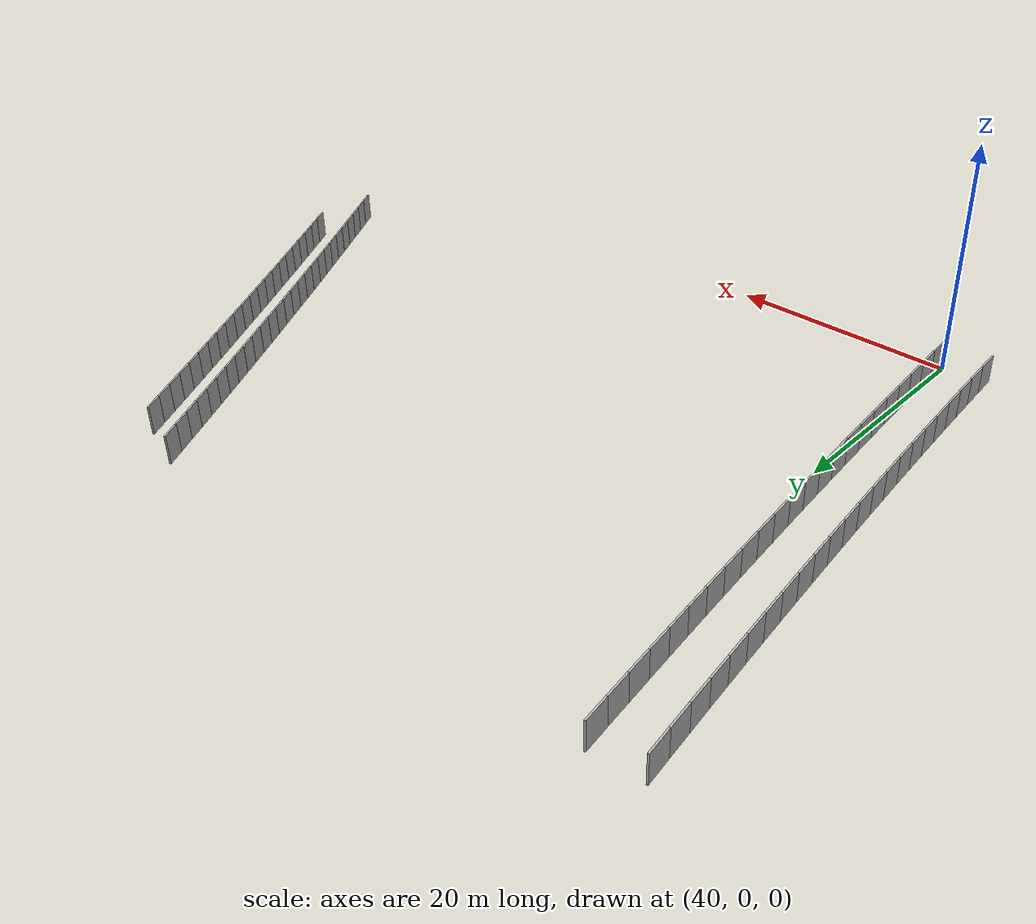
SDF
<sdf version="1.6">
 <model name="sps_2313">
  <static>1</static>
  <allow_auto_disable>0</allow_auto_disable>
  <link name="Wall4616">
   <collision name="collision"><geometry><box><size>2.25473 0.15 2.5</size></box></geometry></collision>
   <visual name="visual">
    <geometry><box><size>2.25473 0.15 2.5</size></box></geometry>
    <transparency>0.0</transparency>
   </visual>
   <pose>40.2125 0.755813 1.25 0 -0 1.63961</pose>
  </link>
  <link name="Wall4617">
   <collision name="collision"><geometry><box><size>2.25463 0.15 2.5</size></box></geometry></collision>
   <visual name="visual">
    <geometry><box><size>2.25463 0.15 2.5</size></box></geometry>
    <transparency>0.0</transparency>
   </visual>
   <pose>40.0551 3.00499 1.25 0 -0 1.64173</pose>
  </link>
  <link name="Wall4618">
   <collision name="collision"><geometry><box><size>2.2545 0.15 2.5</size></box></geometry></collision>
   <visual name="visual">
    <geometry><box><size>2.2545 0.15 2.5</size></box></geometry>
    <transparency>0.0</transparency>
   </visual>
   <pose>39.8924 5.25368 1.25 0 -0 1.64431</pose>
  </link>
  <link name="Wall4619">
   <collision name="collision"><geometry><box><size>2.25469 0.15 2.5</size></box></geometry></collision>
   <visual name="visual">
    <geometry><box><size>2.25469 0.15 2.5</size></box></geometry>
    <transparency>0.0</transparency>
   </visual>
   <pose>39.7244 7.502 1.25 0 -0 1.64653</pose>
  </link>
  <link name="Wall4620">
   <collision name="collision"><geometry><box><size>2.2547 0.15 2.5</size></box></geometry></collision>
   <visual name="visual">
    <geometry><box><size>2.2547 0.15 2.5</size></box></geometry>
    <transparency>0.0</transparency>
   </visual>
   <pose>39.551 9.75001 1.25 0 -0 1.64903</pose>
  </link>
  <link name="Wall4621">
   <collision name="collision"><geometry><box><size>2.2545 0.15 2.5</size></box></geometry></collision>
   <visual name="visual">
    <geometry><box><size>2.2545 0.15 2.5</size></box></geometry>
    <transparency>0.0</transparency>
   </visual>
   <pose>39.3722 11.9975 1.25 0 -0 1.65134</pose>
  </link>
  <link name="Wall4622">
   <collision name="collision"><geometry><box><size>2.25452 0.15 2.5</size></box></geometry></collision>
   <visual name="visual">
    <geometry><box><size>2.25452 0.15 2.5</size></box></geometry>
    <transparency>0.0</transparency>
   </visual>
   <pose>39.188 14.2445 1.25 0 -0 1.65376</pose>
  </link>
  <link name="Wall4623">
   <collision name="collision"><geometry><box><size>2.25388 0.15 2.5</size></box></geometry></collision>
   <visual name="visual">
    <geometry><box><size>2.25388 0.15 2.5</size></box></geometry>
    <transparency>0.0</transparency>
   </visual>
   <pose>38.9981 16.4907 1.25 0 -0 1.65653</pose>
  </link>
  <link name="Wall4624">
   <collision name="collision"><geometry><box><size>2.25489 0.15 2.5</size></box></geometry></collision>
   <visual name="visual">
    <geometry><box><size>2.25489 0.15 2.5</size></box></geometry>
    <transparency>0.0</transparency>
   </visual>
   <pose>38.8028 18.7366 1.25 0 -0 1.65853</pose>
  </link>
  <link name="Wall4625">
   <collision name="collision"><geometry><box><size>2.25432 0.15 2.5</size></box></geometry></collision>
   <visual name="visual">
    <geometry><box><size>2.25432 0.15 2.5</size></box></geometry>
    <transparency>0.0</transparency>
   </visual>
   <pose>38.6027 20.9823 1.25 0 -0 1.66089</pose>
  </link>
  <link name="Wall4626">
   <collision name="collision"><geometry><box><size>2.25487 0.15 2.5</size></box></geometry></collision>
   <visual name="visual">
    <geometry><box><size>2.25487 0.15 2.5</size></box></geometry>
    <transparency>0.0</transparency>
   </visual>
   <pose>38.3971 23.2275 1.25 0 -0 1.66326</pose>
  </link>
  <link name="Wall4627">
   <collision name="collision"><geometry><box><size>2.25453 0.15 2.5</size></box></geometry></collision>
   <visual name="visual">
    <geometry><box><size>2.25453 0.15 2.5</size></box></geometry>
    <transparency>0.0</transparency>
   </visual>
   <pose>38.1862 25.4723 1.25 0 -0 1.66569</pose>
  </link>
  <link name="Wall4628">
   <collision name="collision"><geometry><box><size>2.25441 0.15 2.5</size></box></geometry></collision>
   <visual name="visual">
    <geometry><box><size>2.25441 0.15 2.5</size></box></geometry>
    <transparency>0.0</transparency>
   </visual>
   <pose>37.9701 27.7164 1.25 0 -0 1.66798</pose>
  </link>
  <link name="Wall4629">
   <collision name="collision"><geometry><box><size>2.25475 0.15 2.5</size></box></geometry></collision>
   <visual name="visual">
    <geometry><box><size>2.25475 0.15 2.5</size></box></geometry>
    <transparency>0.0</transparency>
   </visual>
   <pose>37.7487 29.9601 1.25 0 -0 1.67031</pose>
  </link>
  <link name="Wall4630">
   <collision name="collision"><geometry><box><size>2.25458 0.15 2.5</size></box></geometry></collision>
   <visual name="visual">
    <geometry><box><size>2.25458 0.15 2.5</size></box></geometry>
    <transparency>0.0</transparency>
   </visual>
   <pose>37.5219 32.2033 1.25 0 -0 1.67282</pose>
  </link>
  <link name="Wall4631">
   <collision name="collision"><geometry><box><size>2.25481 0.15 2.5</size></box></geometry></collision>
   <visual name="visual">
    <geometry><box><size>2.25481 0.15 2.5</size></box></geometry>
    <transparency>0.0</transparency>
   </visual>
   <pose>37.2897 34.446 1.25 0 -0 1.67512</pose>
  </link>
  <link name="Wall4632">
   <collision name="collision"><geometry><box><size>2.25463 0.15 2.5</size></box></geometry></collision>
   <visual name="visual">
    <geometry><box><size>2.25463 0.15 2.5</size></box></geometry>
    <transparency>0.0</transparency>
   </visual>
   <pose>37.0523 36.6882 1.25 0 -0 1.67744</pose>
  </link>
  <link name="Wall4633">
   <collision name="collision"><geometry><box><size>2.25465 0.15 2.5</size></box></geometry></collision>
   <visual name="visual">
    <geometry><box><size>2.25465 0.15 2.5</size></box></geometry>
    <transparency>0.0</transparency>
   </visual>
   <pose>36.8094 38.9297 1.25 0 -0 1.68003</pose>
  </link>
  <link name="Wall4634">
   <collision name="collision"><geometry><box><size>2.25457 0.15 2.5</size></box></geometry></collision>
   <visual name="visual">
    <geometry><box><size>2.25457 0.15 2.5</size></box></geometry>
    <transparency>0.0</transparency>
   </visual>
   <pose>36.5612 41.1706 1.25 0 -0 1.68218</pose>
  </link>
  <link name="Wall4635">
   <collision name="collision"><geometry><box><size>2.2546 0.15 2.5</size></box></geometry></collision>
   <visual name="visual">
    <geometry><box><size>2.2546 0.15 2.5</size></box></geometry>
    <transparency>0.0</transparency>
   </visual>
   <pose>36.3078 43.4109 1.25 0 -0 1.68469</pose>
  </link>
  <link name="Wall4636">
   <collision name="collision"><geometry><box><size>2.25459 0.15 2.5</size></box></geometry></collision>
   <visual name="visual">
    <geometry><box><size>2.25459 0.15 2.5</size></box></geometry>
    <transparency>0.0</transparency>
   </visual>
   <pose>36.0489 45.6506 1.25 0 -0 1.68701</pose>
  </link>
  <link name="Wall4637">
   <collision name="collision"><geometry><box><size>2.25467 0.15 2.5</size></box></geometry></collision>
   <visual name="visual">
    <geometry><box><size>2.25467 0.15 2.5</size></box></geometry>
    <transparency>0.0</transparency>
   </visual>
   <pose>35.7848 47.8897 1.25 0 -0 1.6894</pose>
  </link>
  <link name="Wall4638">
   <collision name="collision"><geometry><box><size>2.25393 0.15 2.5</size></box></geometry></collision>
   <visual name="visual">
    <geometry><box><size>2.25393 0.15 2.5</size></box></geometry>
    <transparency>0.0</transparency>
   </visual>
   <pose>35.5151 50.1278 1.25 0 -0 1.69211</pose>
  </link>
  <link name="Wall6341">
   <collision name="collision"><geometry><box><size>2.24467 0.15 2.5</size></box></geometry></collision>
   <visual name="visual">
    <geometry><box><size>2.24467 0.15 2.5</size></box></geometry>
    <transparency>0.0</transparency>
   </visual>
   <pose>36.0831 0.471389 1.25 0 -0 1.63945</pose>
  </link>
  <link name="Wall6342">
   <collision name="collision"><geometry><box><size>2.24486 0.15 2.5</size></box></geometry></collision>
   <visual name="visual">
    <geometry><box><size>2.24486 0.15 2.5</size></box></geometry>
    <transparency>0.0</transparency>
   </visual>
   <pose>35.9264 2.71068 1.25 0 -0 1.64187</pose>
  </link>
  <link name="Wall6343">
   <collision name="collision"><geometry><box><size>2.24507 0.15 2.5</size></box></geometry></collision>
   <visual name="visual">
    <geometry><box><size>2.24507 0.15 2.5</size></box></geometry>
    <transparency>0.0</transparency>
   </visual>
   <pose>35.7642 4.94978 1.25 0 -0 1.64427</pose>
  </link>
  <link name="Wall6344">
   <collision name="collision"><geometry><box><size>2.24467 0.15 2.5</size></box></geometry></collision>
   <visual name="visual">
    <geometry><box><size>2.24467 0.15 2.5</size></box></geometry>
    <transparency>0.0</transparency>
   </visual>
   <pose>35.5969 7.1884 1.25 0 -0 1.6466</pose>
  </link>
  <link name="Wall6345">
   <collision name="collision"><geometry><box><size>2.24466 0.15 2.5</size></box></geometry></collision>
   <visual name="visual">
    <geometry><box><size>2.24466 0.15 2.5</size></box></geometry>
    <transparency>0.0</transparency>
   </visual>
   <pose>35.4242 9.42641 1.25 0 -0 1.64902</pose>
  </link>
  <link name="Wall6346">
   <collision name="collision"><geometry><box><size>2.24489 0.15 2.5</size></box></geometry></collision>
   <visual name="visual">
    <geometry><box><size>2.24489 0.15 2.5</size></box></geometry>
    <transparency>0.0</transparency>
   </visual>
   <pose>35.2461 11.6641 1.25 0 -0 1.65133</pose>
  </link>
  <link name="Wall6347">
   <collision name="collision"><geometry><box><size>2.2449 0.15 2.5</size></box></geometry></collision>
   <visual name="visual">
    <geometry><box><size>2.2449 0.15 2.5</size></box></geometry>
    <transparency>0.0</transparency>
   </visual>
   <pose>35.0629 13.9015 1.25 0 -0 1.65373</pose>
  </link>
  <link name="Wall6348">
   <collision name="collision"><geometry><box><size>2.24366 0.15 2.5</size></box></geometry></collision>
   <visual name="visual">
    <geometry><box><size>2.24366 0.15 2.5</size></box></geometry>
    <transparency>0.0</transparency>
   </visual>
   <pose>34.8738 16.1378 1.25 0 -0 1.65656</pose>
  </link>
  <link name="Wall6349">
   <collision name="collision"><geometry><box><size>2.24501 0.15 2.5</size></box></geometry></collision>
   <visual name="visual">
    <geometry><box><size>2.24501 0.15 2.5</size></box></geometry>
    <transparency>0.0</transparency>
   </visual>
   <pose>34.6794 18.3737 1.25 0 -0 1.65848</pose>
  </link>
  <link name="Wall6350">
   <collision name="collision"><geometry><box><size>2.24469 0.15 2.5</size></box></geometry></collision>
   <visual name="visual">
    <geometry><box><size>2.24469 0.15 2.5</size></box></geometry>
    <transparency>0.0</transparency>
   </visual>
   <pose>34.4802 20.6097 1.25 0 -0 1.66084</pose>
  </link>
  <link name="Wall6351">
   <collision name="collision"><geometry><box><size>2.24483 0.15 2.5</size></box></geometry></collision>
   <visual name="visual">
    <geometry><box><size>2.24483 0.15 2.5</size></box></geometry>
    <transparency>0.0</transparency>
   </visual>
   <pose>34.2755 22.8451 1.25 0 -0 1.66332</pose>
  </link>
  <link name="Wall6352">
   <collision name="collision"><geometry><box><size>2.24463 0.15 2.5</size></box></geometry></collision>
   <visual name="visual">
    <geometry><box><size>2.24463 0.15 2.5</size></box></geometry>
    <transparency>0.0</transparency>
   </visual>
   <pose>34.0656 25.08 1.25 0 -0 1.66556</pose>
  </link>
  <link name="Wall6353">
   <collision name="collision"><geometry><box><size>2.24478 0.15 2.5</size></box></geometry></collision>
   <visual name="visual">
    <geometry><box><size>2.24478 0.15 2.5</size></box></geometry>
    <transparency>0.0</transparency>
   </visual>
   <pose>33.8505 27.3144 1.25 0 -0 1.66796</pose>
  </link>
  <link name="Wall6354">
   <collision name="collision"><geometry><box><size>2.24479 0.15 2.5</size></box></geometry></collision>
   <visual name="visual">
    <geometry><box><size>2.24479 0.15 2.5</size></box></geometry>
    <transparency>0.0</transparency>
   </visual>
   <pose>33.63 29.5483 1.25 0 -0 1.67048</pose>
  </link>
  <link name="Wall6355">
   <collision name="collision"><geometry><box><size>2.2448 0.15 2.5</size></box></geometry></collision>
   <visual name="visual">
    <geometry><box><size>2.2448 0.15 2.5</size></box></geometry>
    <transparency>0.0</transparency>
   </visual>
   <pose>33.4041 31.7817 1.25 0 -0 1.67272</pose>
  </link>
  <link name="Wall6356">
   <collision name="collision"><geometry><box><size>2.24482 0.15 2.5</size></box></geometry></collision>
   <visual name="visual">
    <geometry><box><size>2.24482 0.15 2.5</size></box></geometry>
    <transparency>0.0</transparency>
   </visual>
   <pose>33.173 34.0146 1.25 0 -0 1.67515</pose>
  </link>
  <link name="Wall6357">
   <collision name="collision"><geometry><box><size>2.24476 0.15 2.5</size></box></geometry></collision>
   <visual name="visual">
    <geometry><box><size>2.24476 0.15 2.5</size></box></geometry>
    <transparency>0.0</transparency>
   </visual>
   <pose>32.9365 36.2469 1.25 0 -0 1.67748</pose>
  </link>
  <link name="Wall6358">
   <collision name="collision"><geometry><box><size>2.24481 0.15 2.5</size></box></geometry></collision>
   <visual name="visual">
    <geometry><box><size>2.24481 0.15 2.5</size></box></geometry>
    <transparency>0.0</transparency>
   </visual>
   <pose>32.6948 38.4786 1.25 0 -0 1.67996</pose>
  </link>
  <link name="Wall6359">
   <collision name="collision"><geometry><box><size>2.24488 0.15 2.5</size></box></geometry></collision>
   <visual name="visual">
    <geometry><box><size>2.24488 0.15 2.5</size></box></geometry>
    <transparency>0.0</transparency>
   </visual>
   <pose>32.4477 40.7098 1.25 0 -0 1.68223</pose>
  </link>
  <link name="Wall6360">
   <collision name="collision"><geometry><box><size>2.24476 0.15 2.5</size></box></geometry></collision>
   <visual name="visual">
    <geometry><box><size>2.24476 0.15 2.5</size></box></geometry>
    <transparency>0.0</transparency>
   </visual>
   <pose>32.1953 42.9404 1.25 0 -0 1.68464</pose>
  </link>
  <link name="Wall6361">
   <collision name="collision"><geometry><box><size>2.24477 0.15 2.5</size></box></geometry></collision>
   <visual name="visual">
    <geometry><box><size>2.24477 0.15 2.5</size></box></geometry>
    <transparency>0.0</transparency>
   </visual>
   <pose>31.9376 45.1703 1.25 0 -0 1.68705</pose>
  </link>
  <link name="Wall6362">
   <collision name="collision"><geometry><box><size>2.24478 0.15 2.5</size></box></geometry></collision>
   <visual name="visual">
    <geometry><box><size>2.24478 0.15 2.5</size></box></geometry>
    <transparency>0.0</transparency>
   </visual>
   <pose>31.6746 47.3996 1.25 0 -0 1.6894</pose>
  </link>
  <link name="Wall6363">
   <collision name="collision"><geometry><box><size>2.24409 0.15 2.5</size></box></geometry></collision>
   <visual name="visual">
    <geometry><box><size>2.24409 0.15 2.5</size></box></geometry>
    <transparency>0.0</transparency>
   </visual>
   <pose>31.4061 49.6279 1.25 0 -0 1.6921</pose>
  </link>
  <link name="Wall6503">
   <collision name="collision"><geometry><box><size>1.68628 0.15 2.5</size></box></geometry></collision>
   <visual name="visual">
    <geometry><box><size>1.68628 0.15 2.5</size></box></geometry>
    <transparency>0.0</transparency>
   </visual>
   <pose>77.5245 50.1954 1.25 0 0 -1.06189</pose>
  </link>
  <link name="Wall6504">
   <collision name="collision"><geometry><box><size>1.68592 0.15 2.5</size></box></geometry></collision>
   <visual name="visual">
    <geometry><box><size>1.68592 0.15 2.5</size></box></geometry>
    <transparency>0.0</transparency>
   </visual>
   <pose>78.3476 48.7239 1.25 0 0 -1.05961</pose>
  </link>
  <link name="Wall6505">
   <collision name="collision"><geometry><box><size>1.68624 0.15 2.5</size></box></geometry></collision>
   <visual name="visual">
    <geometry><box><size>1.68624 0.15 2.5</size></box></geometry>
    <transparency>0.0</transparency>
   </visual>
   <pose>79.1732 47.2538 1.25 0 0 -1.0586</pose>
  </link>
  <link name="Wall6506">
   <collision name="collision"><geometry><box><size>1.68623 0.15 2.5</size></box></geometry></collision>
   <visual name="visual">
    <geometry><box><size>1.68623 0.15 2.5</size></box></geometry>
    <transparency>0.0</transparency>
   </visual>
   <pose>80.0009 45.7847 1.25 0 0 -1.05685</pose>
  </link>
  <link name="Wall6507">
   <collision name="collision"><geometry><box><size>1.68605 0.15 2.5</size></box></geometry></collision>
   <visual name="visual">
    <geometry><box><size>1.68605 0.15 2.5</size></box></geometry>
    <transparency>0.0</transparency>
   </visual>
   <pose>80.8311 44.3171 1.25 0 0 -1.05513</pose>
  </link>
  <link name="Wall6508">
   <collision name="collision"><geometry><box><size>1.68625 0.15 2.5</size></box></geometry></collision>
   <visual name="visual">
    <geometry><box><size>1.68625 0.15 2.5</size></box></geometry>
    <transparency>0.0</transparency>
   </visual>
   <pose>81.6638 42.8509 1.25 0 0 -1.05345</pose>
  </link>
  <link name="Wall6509">
   <collision name="collision"><geometry><box><size>1.68614 0.15 2.5</size></box></geometry></collision>
   <visual name="visual">
    <geometry><box><size>1.68614 0.15 2.5</size></box></geometry>
    <transparency>0.0</transparency>
   </visual>
   <pose>82.499 41.3861 1.25 0 0 -1.05174</pose>
  </link>
  <link name="Wall6510">
   <collision name="collision"><geometry><box><size>1.6863 0.15 2.5</size></box></geometry></collision>
   <visual name="visual">
    <geometry><box><size>1.6863 0.15 2.5</size></box></geometry>
    <transparency>0.0</transparency>
   </visual>
   <pose>83.3368 39.9227 1.25 0 0 -1.05004</pose>
  </link>
  <link name="Wall6511">
   <collision name="collision"><geometry><box><size>1.68614 0.15 2.5</size></box></geometry></collision>
   <visual name="visual">
    <geometry><box><size>1.68614 0.15 2.5</size></box></geometry>
    <transparency>0.0</transparency>
   </visual>
   <pose>84.177 38.4607 1.25 0 0 -1.04832</pose>
  </link>
  <link name="Wall6512">
   <collision name="collision"><geometry><box><size>1.68629 0.15 2.5</size></box></geometry></collision>
   <visual name="visual">
    <geometry><box><size>1.68629 0.15 2.5</size></box></geometry>
    <transparency>0.0</transparency>
   </visual>
   <pose>85.0196 37.0001 1.25 0 0 -1.04678</pose>
  </link>
  <link name="Wall6513">
   <collision name="collision"><geometry><box><size>1.68612 0.15 2.5</size></box></geometry></collision>
   <visual name="visual">
    <geometry><box><size>1.68612 0.15 2.5</size></box></geometry>
    <transparency>0.0</transparency>
   </visual>
   <pose>85.8646 35.5409 1.25 0 0 -1.04501</pose>
  </link>
  <link name="Wall6514">
   <collision name="collision"><geometry><box><size>1.68622 0.15 2.5</size></box></geometry></collision>
   <visual name="visual">
    <geometry><box><size>1.68622 0.15 2.5</size></box></geometry>
    <transparency>0.0</transparency>
   </visual>
   <pose>86.7121 34.0832 1.25 0 0 -1.04333</pose>
  </link>
  <link name="Wall6515">
   <collision name="collision"><geometry><box><size>1.68618 0.15 2.5</size></box></geometry></collision>
   <visual name="visual">
    <geometry><box><size>1.68618 0.15 2.5</size></box></geometry>
    <transparency>0.0</transparency>
   </visual>
   <pose>87.562 32.6269 1.25 0 0 -1.04164</pose>
  </link>
  <link name="Wall6516">
   <collision name="collision"><geometry><box><size>1.6861 0.15 2.5</size></box></geometry></collision>
   <visual name="visual">
    <geometry><box><size>1.6861 0.15 2.5</size></box></geometry>
    <transparency>0.0</transparency>
   </visual>
   <pose>88.4145 31.1721 1.25 0 0 -1.03993</pose>
  </link>
  <link name="Wall6517">
   <collision name="collision"><geometry><box><size>1.68635 0.15 2.5</size></box></geometry></collision>
   <visual name="visual">
    <geometry><box><size>1.68635 0.15 2.5</size></box></geometry>
    <transparency>0.0</transparency>
   </visual>
   <pose>89.2694 29.7187 1.25 0 0 -1.03825</pose>
  </link>
  <link name="Wall6518">
   <collision name="collision"><geometry><box><size>1.68614 0.15 2.5</size></box></geometry></collision>
   <visual name="visual">
    <geometry><box><size>1.68614 0.15 2.5</size></box></geometry>
    <transparency>0.0</transparency>
   </visual>
   <pose>90.1268 28.2667 1.25 0 0 -1.03654</pose>
  </link>
  <link name="Wall6519">
   <collision name="collision"><geometry><box><size>1.68618 0.15 2.5</size></box></geometry></collision>
   <visual name="visual">
    <geometry><box><size>1.68618 0.15 2.5</size></box></geometry>
    <transparency>0.0</transparency>
   </visual>
   <pose>90.9866 26.8162 1.25 0 0 -1.03487</pose>
  </link>
  <link name="Wall6520">
   <collision name="collision"><geometry><box><size>1.68624 0.15 2.5</size></box></geometry></collision>
   <visual name="visual">
    <geometry><box><size>1.68624 0.15 2.5</size></box></geometry>
    <transparency>0.0</transparency>
   </visual>
   <pose>91.8488 25.3671 1.25 0 0 -1.03325</pose>
  </link>
  <link name="Wall6521">
   <collision name="collision"><geometry><box><size>1.68635 0.15 2.5</size></box></geometry></collision>
   <visual name="visual">
    <geometry><box><size>1.68635 0.15 2.5</size></box></geometry>
    <transparency>0.0</transparency>
   </visual>
   <pose>92.7135 23.9194 1.25 0 0 -1.03152</pose>
  </link>
  <link name="Wall6522">
   <collision name="collision"><geometry><box><size>1.6861 0.15 2.5</size></box></geometry></collision>
   <visual name="visual">
    <geometry><box><size>1.6861 0.15 2.5</size></box></geometry>
    <transparency>0.0</transparency>
   </visual>
   <pose>93.5806 22.4732 1.25 0 0 -1.02987</pose>
  </link>
  <link name="Wall6523">
   <collision name="collision"><geometry><box><size>1.68627 0.15 2.5</size></box></geometry></collision>
   <visual name="visual">
    <geometry><box><size>1.68627 0.15 2.5</size></box></geometry>
    <transparency>0.0</transparency>
   </visual>
   <pose>94.4501 21.0285 1.25 0 0 -1.02815</pose>
  </link>
  <link name="Wall6524">
   <collision name="collision"><geometry><box><size>1.68609 0.15 2.5</size></box></geometry></collision>
   <visual name="visual">
    <geometry><box><size>1.68609 0.15 2.5</size></box></geometry>
    <transparency>0.0</transparency>
   </visual>
   <pose>95.322 19.5853 1.25 0 0 -1.02644</pose>
  </link>
  <link name="Wall6525">
   <collision name="collision"><geometry><box><size>1.68615 0.15 2.5</size></box></geometry></collision>
   <visual name="visual">
    <geometry><box><size>1.68615 0.15 2.5</size></box></geometry>
    <transparency>0.0</transparency>
   </visual>
   <pose>96.1964 18.1436 1.25 0 0 -1.02477</pose>
  </link>
  <link name="Wall6526">
   <collision name="collision"><geometry><box><size>1.68624 0.15 2.5</size></box></geometry></collision>
   <visual name="visual">
    <geometry><box><size>1.68624 0.15 2.5</size></box></geometry>
    <transparency>0.0</transparency>
   </visual>
   <pose>97.0732 16.7033 1.25 0 0 -1.02315</pose>
  </link>
  <link name="Wall6527">
   <collision name="collision"><geometry><box><size>1.68601 0.15 2.5</size></box></geometry></collision>
   <visual name="visual">
    <geometry><box><size>1.68601 0.15 2.5</size></box></geometry>
    <transparency>0.0</transparency>
   </visual>
   <pose>97.9528 15.2648 1.25 0 0 -1.02082</pose>
  </link>
  <link name="Wall6528">
   <collision name="collision"><geometry><box><size>1.68616 0.15 2.5</size></box></geometry></collision>
   <visual name="visual">
    <geometry><box><size>1.68616 0.15 2.5</size></box></geometry>
    <transparency>0.0</transparency>
   </visual>
   <pose>98.8349 13.8278 1.25 0 0 -1.01977</pose>
  </link>
  <link name="Wall6529">
   <collision name="collision"><geometry><box><size>1.68615 0.15 2.5</size></box></geometry></collision>
   <visual name="visual">
    <geometry><box><size>1.68615 0.15 2.5</size></box></geometry>
    <transparency>0.0</transparency>
   </visual>
   <pose>99.719 12.392 1.25 0 0 -1.01798</pose>
  </link>
  <link name="Wall9295">
   <collision name="collision"><geometry><box><size>1.68079 0.15 2.5</size></box></geometry></collision>
   <visual name="visual">
    <geometry><box><size>1.68079 0.15 2.5</size></box></geometry>
    <transparency>0.0</transparency>
   </visual>
   <pose>99.8054 18.3697 1.25 0 -0 2.11863</pose>
  </link>
  <link name="Wall9296">
   <collision name="collision"><geometry><box><size>1.68078 0.15 2.5</size></box></geometry></collision>
   <visual name="visual">
    <geometry><box><size>1.68078 0.15 2.5</size></box></geometry>
    <transparency>0.0</transparency>
   </visual>
   <pose>98.9312 19.8053 1.25 0 -0 2.11681</pose>
  </link>
  <link name="Wall9297">
   <collision name="collision"><geometry><box><size>1.68087 0.15 2.5</size></box></geometry></collision>
   <visual name="visual">
    <geometry><box><size>1.68087 0.15 2.5</size></box></geometry>
    <transparency>0.0</transparency>
   </visual>
   <pose>98.0597 21.2425 1.25 0 -0 2.11508</pose>
  </link>
  <link name="Wall9298">
   <collision name="collision"><geometry><box><size>1.68088 0.15 2.5</size></box></geometry></collision>
   <visual name="visual">
    <geometry><box><size>1.68088 0.15 2.5</size></box></geometry>
    <transparency>0.0</transparency>
   </visual>
   <pose>97.1905 22.6812 1.25 0 -0 2.11346</pose>
  </link>
  <link name="Wall9299">
   <collision name="collision"><geometry><box><size>1.68082 0.15 2.5</size></box></geometry></collision>
   <visual name="visual">
    <geometry><box><size>1.68082 0.15 2.5</size></box></geometry>
    <transparency>0.0</transparency>
   </visual>
   <pose>96.3236 24.1213 1.25 0 -0 2.11179</pose>
  </link>
  <link name="Wall9300">
   <collision name="collision"><geometry><box><size>1.68067 0.15 2.5</size></box></geometry></collision>
   <visual name="visual">
    <geometry><box><size>1.68067 0.15 2.5</size></box></geometry>
    <transparency>0.0</transparency>
   </visual>
   <pose>95.4593 25.5628 1.25 0 -0 2.11002</pose>
  </link>
  <link name="Wall9301">
   <collision name="collision"><geometry><box><size>1.68075 0.15 2.5</size></box></geometry></collision>
   <visual name="visual">
    <geometry><box><size>1.68075 0.15 2.5</size></box></geometry>
    <transparency>0.0</transparency>
   </visual>
   <pose>94.5975 27.0057 1.25 0 -0 2.10847</pose>
  </link>
  <link name="Wall9302">
   <collision name="collision"><geometry><box><size>1.68081 0.15 2.5</size></box></geometry></collision>
   <visual name="visual">
    <geometry><box><size>1.68081 0.15 2.5</size></box></geometry>
    <transparency>0.0</transparency>
   </visual>
   <pose>93.738 28.4501 1.25 0 -0 2.10668</pose>
  </link>
  <link name="Wall9303">
   <collision name="collision"><geometry><box><size>1.68077 0.15 2.5</size></box></geometry></collision>
   <visual name="visual">
    <geometry><box><size>1.68077 0.15 2.5</size></box></geometry>
    <transparency>0.0</transparency>
   </visual>
   <pose>92.881 29.896 1.25 0 -0 2.105</pose>
  </link>
  <link name="Wall9304">
   <collision name="collision"><geometry><box><size>1.6808 0.15 2.5</size></box></geometry></collision>
   <visual name="visual">
    <geometry><box><size>1.6808 0.15 2.5</size></box></geometry>
    <transparency>0.0</transparency>
   </visual>
   <pose>92.0264 31.3433 1.25 0 -0 2.10339</pose>
  </link>
  <link name="Wall9305">
   <collision name="collision"><geometry><box><size>1.68095 0.15 2.5</size></box></geometry></collision>
   <visual name="visual">
    <geometry><box><size>1.68095 0.15 2.5</size></box></geometry>
    <transparency>0.0</transparency>
   </visual>
   <pose>91.1742 32.7921 1.25 0 -0 2.10161</pose>
  </link>
  <link name="Wall9306">
   <collision name="collision"><geometry><box><size>1.68084 0.15 2.5</size></box></geometry></collision>
   <visual name="visual">
    <geometry><box><size>1.68084 0.15 2.5</size></box></geometry>
    <transparency>0.0</transparency>
   </visual>
   <pose>90.3245 34.2424 1.25 0 -0 2.09992</pose>
  </link>
  <link name="Wall9307">
   <collision name="collision"><geometry><box><size>1.68092 0.15 2.5</size></box></geometry></collision>
   <visual name="visual">
    <geometry><box><size>1.68092 0.15 2.5</size></box></geometry>
    <transparency>0.0</transparency>
   </visual>
   <pose>89.4771 35.6941 1.25 0 -0 2.09834</pose>
  </link>
  <link name="Wall9308">
   <collision name="collision"><geometry><box><size>1.68072 0.15 2.5</size></box></geometry></collision>
   <visual name="visual">
    <geometry><box><size>1.68072 0.15 2.5</size></box></geometry>
    <transparency>0.0</transparency>
   </visual>
   <pose>88.6323 37.1472 1.25 0 -0 2.09647</pose>
  </link>
  <link name="Wall9309">
   <collision name="collision"><geometry><box><size>1.68083 0.15 2.5</size></box></geometry></collision>
   <visual name="visual">
    <geometry><box><size>1.68083 0.15 2.5</size></box></geometry>
    <transparency>0.0</transparency>
   </visual>
   <pose>87.7901 38.6017 1.25 0 -0 2.09492</pose>
  </link>
  <link name="Wall9310">
   <collision name="collision"><geometry><box><size>1.68077 0.15 2.5</size></box></geometry></collision>
   <visual name="visual">
    <geometry><box><size>1.68077 0.15 2.5</size></box></geometry>
    <transparency>0.0</transparency>
   </visual>
   <pose>86.9502 40.0576 1.25 0 -0 2.09319</pose>
  </link>
  <link name="Wall9311">
   <collision name="collision"><geometry><box><size>1.68077 0.15 2.5</size></box></geometry></collision>
   <visual name="visual">
    <geometry><box><size>1.68077 0.15 2.5</size></box></geometry>
    <transparency>0.0</transparency>
   </visual>
   <pose>86.1128 41.5149 1.25 0 -0 2.09151</pose>
  </link>
  <link name="Wall9312">
   <collision name="collision"><geometry><box><size>1.68081 0.15 2.5</size></box></geometry></collision>
   <visual name="visual">
    <geometry><box><size>1.68081 0.15 2.5</size></box></geometry>
    <transparency>0.0</transparency>
   </visual>
   <pose>85.2778 42.9736 1.25 0 -0 2.08987</pose>
  </link>
  <link name="Wall9313">
   <collision name="collision"><geometry><box><size>1.68079 0.15 2.5</size></box></geometry></collision>
   <visual name="visual">
    <geometry><box><size>1.68079 0.15 2.5</size></box></geometry>
    <transparency>0.0</transparency>
   </visual>
   <pose>84.4452 44.4337 1.25 0 -0 2.08824</pose>
  </link>
  <link name="Wall9314">
   <collision name="collision"><geometry><box><size>1.68093 0.15 2.5</size></box></geometry></collision>
   <visual name="visual">
    <geometry><box><size>1.68093 0.15 2.5</size></box></geometry>
    <transparency>0.0</transparency>
   </visual>
   <pose>83.615 45.8953 1.25 0 -0 2.0864</pose>
  </link>
  <link name="Wall9315">
   <collision name="collision"><geometry><box><size>1.68082 0.15 2.5</size></box></geometry></collision>
   <visual name="visual">
    <geometry><box><size>1.68082 0.15 2.5</size></box></geometry>
    <transparency>0.0</transparency>
   </visual>
   <pose>82.7874 47.3583 1.25 0 -0 2.08481</pose>
  </link>
  <link name="Wall9316">
   <collision name="collision"><geometry><box><size>1.6804 0.15 2.5</size></box></geometry></collision>
   <visual name="visual">
    <geometry><box><size>1.6804 0.15 2.5</size></box></geometry>
    <transparency>0.0</transparency>
   </visual>
   <pose>81.9619 48.8222 1.25 0 -0 2.0837</pose>
  </link>
 </model>
</sdf>
